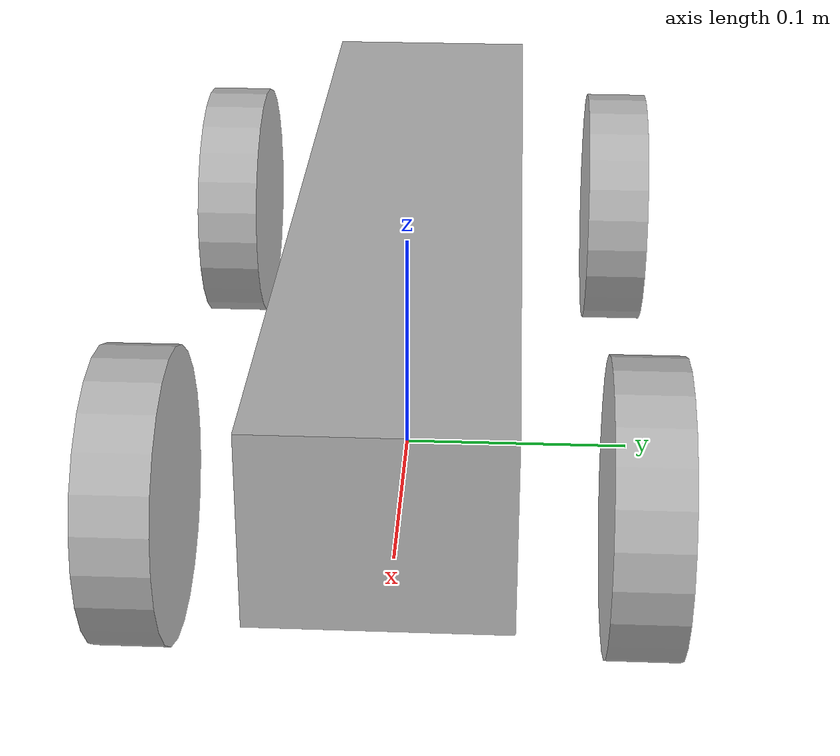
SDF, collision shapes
<sdf version="1.8">
  <model name="rover_ackermann">
    <pose>0 0 .04 0 0 0</pose>
    <self_collide>false</self_collide>
    <static>false</static>
    <link name="base_link">
      <inertial>
        <pose>0 0 0 0 0 0</pose>
        <mass>3.0</mass>
        <inertia>
          <ixx>0.0054</ixx>
          <ixy>0</ixy>
          <ixz>0</ixz>
          <iyy>0.0252</iyy>
          <iyz>0</iyz>
          <izz>0.0252</izz>
        </inertia>
      </inertial>
      <visual name="rover_ackermann/BaseVisual">
        <pose>0 0 -.0115 -0.018 0 -1.5707</pose>
        <geometry>
          <mesh>
            <uri>model://rover_ackermann/meshes/MainBody.dae</uri>
          </mesh>
        </geometry>
      </visual>
      <collision name="rover_ackermann/BaseCollision">
        <pose>-0.03 0 .03 0 0 0</pose>
        <geometry>
          <box>
            <size>.45 .1 .08</size>
          </box>
        </geometry>
      </collision>
      <sensor name="imu_sensor" type="imu">
        <gz_frame_id>base_link</gz_frame_id>
        <always_on>1</always_on>
        <update_rate>250</update_rate>
        <imu>
          <angular_velocity>
            <x>
              <noise type="gaussian">
                <mean>0</mean>
                <stddev>0.0003394</stddev>
                <dynamic_bias_stddev>3.8785e-05</dynamic_bias_stddev>
                <dynamic_bias_correlation_time>1000</dynamic_bias_correlation_time>
              </noise>
            </x>
            <y>
              <noise type="gaussian">
                <mean>0</mean>
                <stddev>0.0003394</stddev>
                <dynamic_bias_stddev>3.8785e-05</dynamic_bias_stddev>
                <dynamic_bias_correlation_time>1000</dynamic_bias_correlation_time>
              </noise>
            </y>
            <z>
              <noise type="gaussian">
                <mean>0</mean>
                <stddev>0.0003394</stddev>
                <dynamic_bias_stddev>3.8785e-05</dynamic_bias_stddev>
                <dynamic_bias_correlation_time>1000</dynamic_bias_correlation_time>
              </noise>
            </z>
          </angular_velocity>
          <linear_acceleration>
            <x>
              <noise type="gaussian">
                <mean>0</mean>
                <stddev>0.004</stddev>
                <dynamic_bias_stddev>0.006</dynamic_bias_stddev>
                <dynamic_bias_correlation_time>300</dynamic_bias_correlation_time>
              </noise>
            </x>
            <y>
              <noise type="gaussian">
                <mean>0</mean>
                <stddev>0.004</stddev>
                <dynamic_bias_stddev>0.006</dynamic_bias_stddev>
                <dynamic_bias_correlation_time>300</dynamic_bias_correlation_time>
              </noise>
            </y>
            <z>
              <noise type="gaussian">
                <mean>0</mean>
                <stddev>0.004</stddev>
                <dynamic_bias_stddev>0.006</dynamic_bias_stddev>
                <dynamic_bias_correlation_time>300</dynamic_bias_correlation_time>
              </noise>
            </z>
          </linear_acceleration>
        </imu>
      </sensor>
      <sensor name="air_pressure_sensor" type="air_pressure">
        <gz_frame_id>base_link</gz_frame_id>
        <always_on>1</always_on>
        <update_rate>50</update_rate>
        <air_pressure>
          <pressure>
            <noise type="gaussian">
              <mean>0</mean>
              <stddev>0.01</stddev>
            </noise>
          </pressure>
        </air_pressure>
      </sensor>
      <sensor name="magnetometer_sensor" type="magnetometer">
        <gz_frame_id>base_link</gz_frame_id>
        <always_on>1</always_on>
        <update_rate>100</update_rate>
        <magnetometer>
          <!-- TODO: update to fix units and coordinate system when we move past Harmonic -->
          <!-- See https://github.com/gazebosim/gz-sim/pull/2460 -->
          <!-- 3mgauss RMS: NOTE: noise is in tesla but sensor reports data in gauss -->
          <!-- Noise modeled after IIS2MDC -->
          <x>
            <noise type="gaussian">
              <stddev>0.0001</stddev>
            </noise>
          </x>
          <y>
            <noise type="gaussian">
              <stddev>0.0001</stddev>
            </noise>
          </y>
          <z>
            <noise type="gaussian">
              <stddev>0.0001</stddev>
            </noise>
          </z>
        </magnetometer>
      </sensor>
      <sensor name="navsat_sensor" type="navsat">
        <gz_frame_id>base_link</gz_frame_id>
        <always_on>1</always_on>
        <update_rate>30</update_rate>
      </sensor>
    </link>
    <link name="rover_ackermann/FrontRightWheel">
      <pose relative_to="rover_ackermann/FrontRightWheelJoint">0 0 0 0 0 0</pose>
      <inertial>
        <mass>.05</mass>
        <inertia>
          <ixx>0.00003331</ixx>
          <ixy>0</ixy>
          <ixz>0</ixz>
          <iyy>0.0000204</iyy>
          <iyz>0</iyz>
          <izz>0.0000204</izz>
        </inertia>
      </inertial>
      <gravity>true</gravity>
      <velocity_decay />
      <visual name="rover_ackermann/FrontRightWheelVisual">
        <pose relative_to="rover_ackermann/FrontRightWheelJoint">0 -0.02 0 0 0 3.14159</pose>
        <geometry>
          <mesh>
            <uri>model://rover_ackermann/meshes/Wheel.dae</uri>
          </mesh>
        </geometry>
      </visual>
      <collision name="rover_ackermann/FrontRightWheelCollision">
        <pose relative_to="rover_ackermann/FrontRightWheelJoint">0 0 0 -1.5707 0 0</pose>
        <geometry>
          <cylinder>
            <length>0.03</length>
            <radius>0.06</radius>
          </cylinder>
        </geometry>
        <surface>
          <friction>
            <ode>
              <mu>1.0</mu>
              <mu2>1.0</mu2>
              <fdir1>1 0 0</fdir1>
            </ode>
          </friction>
        </surface>
      </collision>
    </link>
    <link name="rover_ackermann/FrontRightWheelSteering">
      <pose relative_to="servo_1">0 0 0 0 0 0</pose>
      <inertial>
        <mass>0.005</mass>
        <inertia>
          <ixx>0.0000018</ixx>
          <iyy>0.0000018</iyy>
          <izz>0.0000018</izz>
        </inertia>
      </inertial>
    </link>
    <link name="rover_ackermann/FrontLeftWheel">
      <pose relative_to="rover_ackermann/FrontLeftWheelJoint">0 0 0 0 0 0</pose>
      <inertial>
        <mass>.05</mass>
        <inertia>
          <ixx>0.00003331</ixx>
          <ixy>0</ixy>
          <ixz>0</ixz>
          <iyy>0.0000204</iyy>
          <iyz>0</iyz>
          <izz>0.0000204</izz>
        </inertia>
      </inertial>
      <gravity>true</gravity>
      <velocity_decay />
      <visual name="rover_ackermann/FrontLeftWheelVisual">
        <pose relative_to="rover_ackermann/FrontLeftWheelJoint">0 -0.02 0 0 0 3.14159</pose>
        <geometry>
          <mesh>
            <uri>model://rover_ackermann/meshes/Wheel.dae</uri>
          </mesh>
        </geometry>
      </visual>
      <collision name="rover_ackermann/FrontLeftWheelCollision">
        <pose relative_to="rover_ackermann/FrontLeftWheelJoint">0 0 0 -1.5707 0 0</pose>
        <geometry>
          <cylinder>
            <length>0.03</length>
            <radius>0.06</radius>
          </cylinder>
        </geometry>
        <surface>
          <friction>
            <ode>
              <mu>1.0</mu>
              <mu2>1.0</mu2>
              <fdir1>1 0 0</fdir1>
            </ode>
          </friction>
        </surface>
      </collision>
    </link>
    <link name="rover_ackermann/FrontLeftWheelSteering">
      <pose relative_to="servo_0 ">0 0 0 0 0 0</pose>
      <inertial>
        <mass>0.005</mass>
        <inertia>
          <ixx>0.0000018</ixx>
          <iyy>0.0000018</iyy>
          <izz>0.0000018</izz>
        </inertia>
      </inertial>
    </link>
    <link name="rover_ackermann/RearRightWheel">
      <pose relative_to="rover_ackermann/RearRightWheelJoint">0 0 0 0 0 0</pose>
      <inertial>
        <mass>.05</mass>
        <inertia>
          <ixx>0.00003331</ixx>
          <ixy>0</ixy>
          <ixz>0</ixz>
          <iyy>0.0000204</iyy>
          <iyz>0</iyz>
          <izz>0.0000204</izz>
        </inertia>
      </inertial>
      <gravity>true</gravity>
      <velocity_decay />
      <visual name="rover_ackermann/RearRightWheelVisual">
        <pose relative_to="rover_ackermann/RearRightWheelJoint">0 -0.02 0 0 0 3.14159</pose>
        <geometry>
          <mesh>
            <uri>model://rover_ackermann/meshes/Wheel.dae</uri>
          </mesh>
        </geometry>
      </visual>
      <collision name="rover_ackermann/RearRightWheelCollision">
        <pose relative_to="rover_ackermann/RearRightWheelJoint">0 0 0 -1.5707 0 0</pose>
        <geometry>
          <cylinder>
            <length>0.03</length>
            <radius>0.06</radius>
          </cylinder>
        </geometry>
        <surface>
          <friction>
            <ode>
              <mu>1.0</mu>
              <mu2>1.0</mu2>
              <fdir1>1 0 0</fdir1>
            </ode>
          </friction>
        </surface>
      </collision>
    </link>
    <link name="rover_ackermann/RearLeftWheel">
      <pose relative_to="rover_ackermann/RearLeftWheelJoint">0 0 0 0 0 0</pose>
      <inertial>
        <mass>.05</mass>
        <inertia>
          <ixx>0.00003331</ixx>
          <ixy>0</ixy>
          <ixz>0</ixz>
          <iyy>0.0000204</iyy>
          <iyz>0</iyz>
          <izz>0.0000204</izz>
        </inertia>
      </inertial>
      <gravity>true</gravity>
      <velocity_decay />
      <visual name="rover_ackermann/RearLeftWheelVisual">
        <pose relative_to="rover_ackermann/RearLeftWheelJoint">0 -0.02 0 0 0 3.14159</pose>
        <geometry>
          <mesh>
            <uri>model://rover_ackermann/meshes/Wheel.dae</uri>
          </mesh>
        </geometry>
      </visual>
      <collision name="rover_ackermann/RearLeftWheelCollision">
        <pose relative_to="rover_ackermann/RearLeftWheelJoint">0 0 0 -1.5707 0 0</pose>
        <geometry>
          <cylinder>
            <length>0.03</length>
            <radius>0.06</radius>
          </cylinder>
        </geometry>
        <surface>
          <friction>
            <ode>
              <mu>1.0</mu>
              <mu2>1.0</mu2>
              <fdir1>1 0 0</fdir1>
            </ode>
          </friction>
        </surface>
      </collision>
    </link>
    <joint name="servo_1" type="revolute">
      <parent>base_link</parent>
      <child>rover_ackermann/FrontRightWheelSteering</child>
      <pose relative_to="base_link">.120 -.1 0 0 0 0</pose>
      <axis>
        <xyz>0 0 1</xyz>
        <limit>
          <lower>-0.5236</lower>
          <upper>0.5236</upper>
          <velocity>1.0</velocity>
          <effort>25</effort>
        </limit>
        <use_parent_model_frame>1</use_parent_model_frame>
      </axis>
    </joint>
    <joint name="servo_0 " type="revolute">
      <parent>base_link</parent>
      <child>rover_ackermann/FrontLeftWheelSteering</child>
      <pose relative_to="base_link">.120 .1 0 0 0 0</pose>
      <axis>
        <xyz>0 0 1</xyz>
        <limit>
          <lower>-0.5236</lower>
          <upper>0.5236</upper>
          <velocity>1.0</velocity>
          <effort>25</effort>
        </limit>
        <use_parent_model_frame>1</use_parent_model_frame>
      </axis>
    </joint>
    <joint name="rover_ackermann/FrontRightWheelJoint" type="revolute">
      <parent>rover_ackermann/FrontRightWheelSteering</parent>
      <child>rover_ackermann/FrontRightWheel</child>
      <pose relative_to="servo_1">0 0 0 0 0 0</pose>
      <axis>
        <xyz>0 1 0</xyz>
        <limit>
          <lower>-1.79769e+308</lower>
          <upper>1.79769e+308</upper>
          <velocity>50.0</velocity>
        </limit>
        <dynamics>
          <spring_reference>0</spring_reference>
          <spring_stiffness>0</spring_stiffness>
        </dynamics>
        <use_parent_model_frame>1</use_parent_model_frame>
      </axis>
    </joint>
    <joint name="rover_ackermann/FrontLeftWheelJoint" type="revolute">
      <parent>rover_ackermann/FrontLeftWheelSteering</parent>
      <child>rover_ackermann/FrontLeftWheel</child>
      <pose relative_to="servo_0 ">0 0 0 0 0 0</pose>
      <axis>
        <xyz>0 1 0</xyz>
        <limit>
          <lower>-1.79769e+308</lower>
          <upper>1.79769e+308</upper>
          <velocity>50.0</velocity>
        </limit>
        <dynamics>
          <spring_reference>0</spring_reference>
          <spring_stiffness>0</spring_stiffness>
        </dynamics>
        <use_parent_model_frame>1</use_parent_model_frame>
      </axis>
    </joint>
    <joint name="rover_ackermann/RearRightWheelJoint" type="revolute">
      <parent>base_link</parent>
      <child>rover_ackermann/RearRightWheel</child>
      <pose relative_to="base_link">-0.192 -.1 0 0 0 0</pose>
      <axis>
        <xyz>0 1 0</xyz>
        <limit>
          <lower>-1.79769e+308</lower>
          <upper>1.79769e+308</upper>
          <velocity>50.0</velocity>
        </limit>
        <dynamics>
          <spring_reference>0</spring_reference>
          <spring_stiffness>0</spring_stiffness>
        </dynamics>
        <use_parent_model_frame>1</use_parent_model_frame>
      </axis>
    </joint>
    <joint name="rover_ackermann/RearLeftWheelJoint" type="revolute">
      <parent>base_link</parent>
      <child>rover_ackermann/RearLeftWheel</child>
      <pose relative_to="base_link">-0.192 .1 0 0 0 0</pose>
      <axis>
        <xyz>0 1 0</xyz>
        <limit>
          <lower>-1.79769e+308</lower>
          <upper>1.79769e+308</upper>
          <velocity>50.0</velocity>
        </limit>
        <dynamics>
          <spring_reference>0</spring_reference>
          <spring_stiffness>0</spring_stiffness>
        </dynamics>
        <use_parent_model_frame>1</use_parent_model_frame>
      </axis>
    </joint>
    <plugin filename="gz-sim-joint-controller-system" name="gz::sim::systems::JointController">
      <joint_name>rover_ackermann/FrontLeftWheelJoint</joint_name>
      <sub_topic>command/motor_speed</sub_topic>
      <use_actuator_msg>true</use_actuator_msg>
      <actuator_number>0</actuator_number>
      <p_gain>10.0</p_gain>
    </plugin>
    <plugin filename="gz-sim-joint-controller-system" name="gz::sim::systems::JointController">
      <joint_name>rover_ackermann/FrontRightWheelJoint</joint_name>
      <sub_topic>command/motor_speed</sub_topic>
      <use_actuator_msg>true</use_actuator_msg>
      <actuator_number>0</actuator_number>
      <p_gain>10.0</p_gain>
    </plugin>
    <plugin filename="gz-sim-joint-controller-system" name="gz::sim::systems::JointController">
      <joint_name>rover_ackermann/RearRightWheelJoint</joint_name>
      <sub_topic>command/motor_speed</sub_topic>
      <use_actuator_msg>true</use_actuator_msg>
      <actuator_number>0</actuator_number>
      <p_gain>10.0</p_gain>
    </plugin>
    <plugin filename="gz-sim-joint-controller-system" name="gz::sim::systems::JointController">
      <joint_name>rover_ackermann/RearLeftWheelJoint</joint_name>
      <sub_topic>command/motor_speed</sub_topic>
      <use_actuator_msg>true</use_actuator_msg>
      <actuator_number>0</actuator_number>
      <p_gain>10.0</p_gain>
    </plugin>
    <plugin
      filename="gz-sim-joint-state-publisher-system"
      name="gz::sim::systems::JointStatePublisher">
      <joint_name>rover_ackermann/FrontLeftWheelJoint</joint_name>
      <joint_name>rover_ackermann/FrontRightWheelJoint</joint_name>
      <joint_name>rover_ackermann/RearLeftWheelJoint</joint_name>
      <joint_name>rover_ackermann/RearLeftWheelJoint</joint_name>
      <joint_name>servo_0</joint_name>
      <joint_name>servo_1</joint_name>
    </plugin>
    <plugin
      filename="gz-sim-joint-position-controller-system"
      name="gz::sim::systems::JointPositionController">
      <joint_name>servo_0</joint_name>
      <sub_topic>servo_0</sub_topic>
      <p_gain>10</p_gain>
      <i_gain>0</i_gain>
      <d_gain>0</d_gain>
    </plugin>
    <plugin
      filename="gz-sim-joint-position-controller-system"
      name="gz::sim::systems::JointPositionController">
      <joint_name>servo_1</joint_name>
      <sub_topic>servo_0</sub_topic>
      <p_gain>10</p_gain>
      <i_gain>0</i_gain>
      <d_gain>0</d_gain>
    </plugin>
    <plugin filename="libRealGazebo.so" name="custom::RealGazebo">
      <unreal_ip>127.0.0.1</unreal_ip>      <!-- only localhost supported, try to use RealGazebo-ROS2 to use another address -->
      <unreal_port>5005</unreal_port>       <!-- only 5005 port supported, try to use RealGazebo-ROS2 to use another port -->
      <motorJointList>
        <motorJoint name="rover_ackermann/FrontLeftWheelJoint"/>
        <motorJoint name="rover_ackermann/FrontRightWheelJoint"/>
        <motorJoint name="rover_ackermann/RearLeftWheelJoint"/>
        <motorJoint name="rover_ackermann/RearRightWheelJoint"/>
      </motorJointList>
      <moveableLinkList>
        <moveableLink name="rover_ackermann/FrontLeftWheelSteering"/>
        <moveableLink name="rover_ackermann/FrontRightWheelSteering"/>
      </moveableLinkList>
    </plugin>
  </model>
</sdf>
